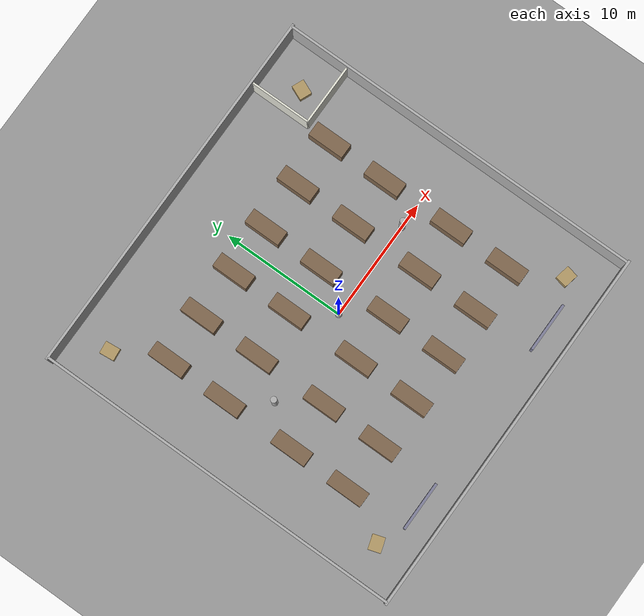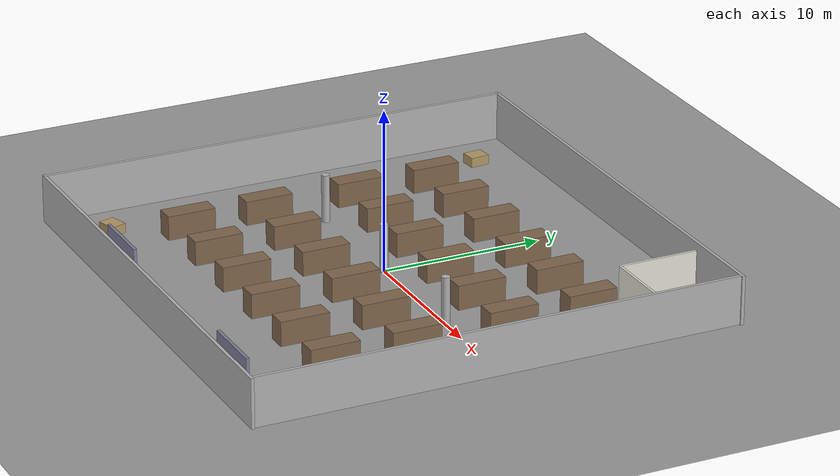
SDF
<?xml version="1.0" ?>
<sdf version="1.8">
  <world name="warehouse">
    <!-- Physics -->
    <physics name="1ms" type="ignored">
      <max_step_size>0.001</max_step_size>
      <real_time_factor>1.0</real_time_factor>
    </physics>

    <!-- Plugins required for simulation -->
    <plugin filename="gz-sim-physics-system" name="gz::sim::systems::Physics"/>
    <plugin filename="gz-sim-user-commands-system" name="gz::sim::systems::UserCommands"/>
    <plugin filename="gz-sim-scene-broadcaster-system" name="gz::sim::systems::SceneBroadcaster"/>
    <plugin filename="gz-sim-contact-system" name="gz::sim::systems::Contact"/>
    <plugin filename="gz-sim-imu-system" name="gz::sim::systems::Imu"/>
    <plugin filename="gz-sim-sensors-system" name="gz::sim::systems::Sensors">
      <render_engine>ogre2</render_engine>
    </plugin>

    <!-- Lighting - ceiling lights -->
    <light type="directional" name="overhead_1">
      <cast_shadows>true</cast_shadows>
      <pose>0 0 12 0 0 0</pose>
      <diffuse>0.9 0.9 0.9 1</diffuse>
      <specular>0.3 0.3 0.3 1</specular>
      <direction>0.0 0.0 -1.0</direction>
    </light>
    <light type="directional" name="overhead_2">
      <cast_shadows>false</cast_shadows>
      <pose>0 0 12 0 0 0</pose>
      <diffuse>0.3 0.3 0.3 1</diffuse>
      <specular>0.1 0.1 0.1 1</specular>
      <direction>-0.5 0.3 -0.8</direction>
    </light>

    <!-- Ground plane (warehouse floor) -->
    <model name="ground_plane">
      <static>true</static>
      <link name="link">
        <collision name="collision">
          <geometry>
            <plane>
              <normal>0 0 1</normal>
              <size>100 100</size>
            </plane>
          </geometry>
        </collision>
        <visual name="visual">
          <geometry>
            <plane>
              <normal>0 0 1</normal>
              <size>100 100</size>
            </plane>
          </geometry>
          <material>
            <ambient>0.6 0.6 0.6 1</ambient>
            <diffuse>0.6 0.6 0.6 1</diffuse>
          </material>
        </visual>
      </link>
    </model>

    <!-- ==================== Outer walls (30m x 30m) ==================== -->
    <!-- North wall -->
    <model name="wall_north">
      <static>true</static>
      <pose>0 15 1.5 0 0 0</pose>
      <link name="link">
        <collision name="collision">
          <geometry><box><size>30.4 0.2 3</size></box></geometry>
        </collision>
        <visual name="visual">
          <geometry><box><size>30.4 0.2 3</size></box></geometry>
          <material><ambient>0.7 0.7 0.7 1</ambient><diffuse>0.7 0.7 0.7 1</diffuse></material>
        </visual>
      </link>
    </model>
    <!-- South wall -->
    <model name="wall_south">
      <static>true</static>
      <pose>0 -15 1.5 0 0 0</pose>
      <link name="link">
        <collision name="collision">
          <geometry><box><size>30.4 0.2 3</size></box></geometry>
        </collision>
        <visual name="visual">
          <geometry><box><size>30.4 0.2 3</size></box></geometry>
          <material><ambient>0.7 0.7 0.7 1</ambient><diffuse>0.7 0.7 0.7 1</diffuse></material>
        </visual>
      </link>
    </model>
    <!-- East wall -->
    <model name="wall_east">
      <static>true</static>
      <pose>15 0 1.5 0 0 0</pose>
      <link name="link">
        <collision name="collision">
          <geometry><box><size>0.2 30 3</size></box></geometry>
        </collision>
        <visual name="visual">
          <geometry><box><size>0.2 30 3</size></box></geometry>
          <material><ambient>0.7 0.7 0.7 1</ambient><diffuse>0.7 0.7 0.7 1</diffuse></material>
        </visual>
      </link>
    </model>
    <!-- West wall -->
    <model name="wall_west">
      <static>true</static>
      <pose>-15 0 1.5 0 0 0</pose>
      <link name="link">
        <collision name="collision">
          <geometry><box><size>0.2 30 3</size></box></geometry>
        </collision>
        <visual name="visual">
          <geometry><box><size>0.2 30 3</size></box></geometry>
          <material><ambient>0.7 0.7 0.7 1</ambient><diffuse>0.7 0.7 0.7 1</diffuse></material>
        </visual>
      </link>
    </model>

    <!-- ==================== Shelf rows (6 rows) ==================== -->
    <!-- Row A: x=-10, y from -10 to 10, 4 shelves -->
    <model name="shelf_a1">
      <static>true</static>
      <pose>-10 -8 0.75 0 0 0</pose>
      <link name="link">
        <collision name="collision"><geometry><box><size>1.2 3.0 1.5</size></box></geometry></collision>
        <visual name="visual">
          <geometry><box><size>1.2 3.0 1.5</size></box></geometry>
          <material><ambient>0.4 0.3 0.2 1</ambient><diffuse>0.5 0.4 0.3 1</diffuse></material>
        </visual>
      </link>
    </model>
    <model name="shelf_a2">
      <static>true</static>
      <pose>-10 -3 0.75 0 0 0</pose>
      <link name="link">
        <collision name="collision"><geometry><box><size>1.2 3.0 1.5</size></box></geometry></collision>
        <visual name="visual">
          <geometry><box><size>1.2 3.0 1.5</size></box></geometry>
          <material><ambient>0.4 0.3 0.2 1</ambient><diffuse>0.5 0.4 0.3 1</diffuse></material>
        </visual>
      </link>
    </model>
    <model name="shelf_a3">
      <static>true</static>
      <pose>-10 3 0.75 0 0 0</pose>
      <link name="link">
        <collision name="collision"><geometry><box><size>1.2 3.0 1.5</size></box></geometry></collision>
        <visual name="visual">
          <geometry><box><size>1.2 3.0 1.5</size></box></geometry>
          <material><ambient>0.4 0.3 0.2 1</ambient><diffuse>0.5 0.4 0.3 1</diffuse></material>
        </visual>
      </link>
    </model>
    <model name="shelf_a4">
      <static>true</static>
      <pose>-10 8 0.75 0 0 0</pose>
      <link name="link">
        <collision name="collision"><geometry><box><size>1.2 3.0 1.5</size></box></geometry></collision>
        <visual name="visual">
          <geometry><box><size>1.2 3.0 1.5</size></box></geometry>
          <material><ambient>0.4 0.3 0.2 1</ambient><diffuse>0.5 0.4 0.3 1</diffuse></material>
        </visual>
      </link>
    </model>

    <!-- Row B: x=-6 -->
    <model name="shelf_b1">
      <static>true</static>
      <pose>-6 -8 0.75 0 0 0</pose>
      <link name="link">
        <collision name="collision"><geometry><box><size>1.2 3.0 1.5</size></box></geometry></collision>
        <visual name="visual">
          <geometry><box><size>1.2 3.0 1.5</size></box></geometry>
          <material><ambient>0.4 0.3 0.2 1</ambient><diffuse>0.5 0.4 0.3 1</diffuse></material>
        </visual>
      </link>
    </model>
    <model name="shelf_b2">
      <static>true</static>
      <pose>-6 -3 0.75 0 0 0</pose>
      <link name="link">
        <collision name="collision"><geometry><box><size>1.2 3.0 1.5</size></box></geometry></collision>
        <visual name="visual">
          <geometry><box><size>1.2 3.0 1.5</size></box></geometry>
          <material><ambient>0.4 0.3 0.2 1</ambient><diffuse>0.5 0.4 0.3 1</diffuse></material>
        </visual>
      </link>
    </model>
    <model name="shelf_b3">
      <static>true</static>
      <pose>-6 3 0.75 0 0 0</pose>
      <link name="link">
        <collision name="collision"><geometry><box><size>1.2 3.0 1.5</size></box></geometry></collision>
        <visual name="visual">
          <geometry><box><size>1.2 3.0 1.5</size></box></geometry>
          <material><ambient>0.4 0.3 0.2 1</ambient><diffuse>0.5 0.4 0.3 1</diffuse></material>
        </visual>
      </link>
    </model>
    <model name="shelf_b4">
      <static>true</static>
      <pose>-6 8 0.75 0 0 0</pose>
      <link name="link">
        <collision name="collision"><geometry><box><size>1.2 3.0 1.5</size></box></geometry></collision>
        <visual name="visual">
          <geometry><box><size>1.2 3.0 1.5</size></box></geometry>
          <material><ambient>0.4 0.3 0.2 1</ambient><diffuse>0.5 0.4 0.3 1</diffuse></material>
        </visual>
      </link>
    </model>

    <!-- Row C: x=-2 -->
    <model name="shelf_c1">
      <static>true</static>
      <pose>-2 -8 0.75 0 0 0</pose>
      <link name="link">
        <collision name="collision"><geometry><box><size>1.2 3.0 1.5</size></box></geometry></collision>
        <visual name="visual">
          <geometry><box><size>1.2 3.0 1.5</size></box></geometry>
          <material><ambient>0.4 0.3 0.2 1</ambient><diffuse>0.5 0.4 0.3 1</diffuse></material>
        </visual>
      </link>
    </model>
    <model name="shelf_c2">
      <static>true</static>
      <pose>-2 -3 0.75 0 0 0</pose>
      <link name="link">
        <collision name="collision"><geometry><box><size>1.2 3.0 1.5</size></box></geometry></collision>
        <visual name="visual">
          <geometry><box><size>1.2 3.0 1.5</size></box></geometry>
          <material><ambient>0.4 0.3 0.2 1</ambient><diffuse>0.5 0.4 0.3 1</diffuse></material>
        </visual>
      </link>
    </model>
    <model name="shelf_c3">
      <static>true</static>
      <pose>-2 3 0.75 0 0 0</pose>
      <link name="link">
        <collision name="collision"><geometry><box><size>1.2 3.0 1.5</size></box></geometry></collision>
        <visual name="visual">
          <geometry><box><size>1.2 3.0 1.5</size></box></geometry>
          <material><ambient>0.4 0.3 0.2 1</ambient><diffuse>0.5 0.4 0.3 1</diffuse></material>
        </visual>
      </link>
    </model>
    <model name="shelf_c4">
      <static>true</static>
      <pose>-2 8 0.75 0 0 0</pose>
      <link name="link">
        <collision name="collision"><geometry><box><size>1.2 3.0 1.5</size></box></geometry></collision>
        <visual name="visual">
          <geometry><box><size>1.2 3.0 1.5</size></box></geometry>
          <material><ambient>0.4 0.3 0.2 1</ambient><diffuse>0.5 0.4 0.3 1</diffuse></material>
        </visual>
      </link>
    </model>

    <!-- Row D: x=2 -->
    <model name="shelf_d1">
      <static>true</static>
      <pose>2 -8 0.75 0 0 0</pose>
      <link name="link">
        <collision name="collision"><geometry><box><size>1.2 3.0 1.5</size></box></geometry></collision>
        <visual name="visual">
          <geometry><box><size>1.2 3.0 1.5</size></box></geometry>
          <material><ambient>0.4 0.3 0.2 1</ambient><diffuse>0.5 0.4 0.3 1</diffuse></material>
        </visual>
      </link>
    </model>
    <model name="shelf_d2">
      <static>true</static>
      <pose>2 -3 0.75 0 0 0</pose>
      <link name="link">
        <collision name="collision"><geometry><box><size>1.2 3.0 1.5</size></box></geometry></collision>
        <visual name="visual">
          <geometry><box><size>1.2 3.0 1.5</size></box></geometry>
          <material><ambient>0.4 0.3 0.2 1</ambient><diffuse>0.5 0.4 0.3 1</diffuse></material>
        </visual>
      </link>
    </model>
    <model name="shelf_d3">
      <static>true</static>
      <pose>2 3 0.75 0 0 0</pose>
      <link name="link">
        <collision name="collision"><geometry><box><size>1.2 3.0 1.5</size></box></geometry></collision>
        <visual name="visual">
          <geometry><box><size>1.2 3.0 1.5</size></box></geometry>
          <material><ambient>0.4 0.3 0.2 1</ambient><diffuse>0.5 0.4 0.3 1</diffuse></material>
        </visual>
      </link>
    </model>
    <model name="shelf_d4">
      <static>true</static>
      <pose>2 8 0.75 0 0 0</pose>
      <link name="link">
        <collision name="collision"><geometry><box><size>1.2 3.0 1.5</size></box></geometry></collision>
        <visual name="visual">
          <geometry><box><size>1.2 3.0 1.5</size></box></geometry>
          <material><ambient>0.4 0.3 0.2 1</ambient><diffuse>0.5 0.4 0.3 1</diffuse></material>
        </visual>
      </link>
    </model>

    <!-- Row E: x=6 -->
    <model name="shelf_e1">
      <static>true</static>
      <pose>6 -8 0.75 0 0 0</pose>
      <link name="link">
        <collision name="collision"><geometry><box><size>1.2 3.0 1.5</size></box></geometry></collision>
        <visual name="visual">
          <geometry><box><size>1.2 3.0 1.5</size></box></geometry>
          <material><ambient>0.4 0.3 0.2 1</ambient><diffuse>0.5 0.4 0.3 1</diffuse></material>
        </visual>
      </link>
    </model>
    <model name="shelf_e2">
      <static>true</static>
      <pose>6 -3 0.75 0 0 0</pose>
      <link name="link">
        <collision name="collision"><geometry><box><size>1.2 3.0 1.5</size></box></geometry></collision>
        <visual name="visual">
          <geometry><box><size>1.2 3.0 1.5</size></box></geometry>
          <material><ambient>0.4 0.3 0.2 1</ambient><diffuse>0.5 0.4 0.3 1</diffuse></material>
        </visual>
      </link>
    </model>
    <model name="shelf_e3">
      <static>true</static>
      <pose>6 3 0.75 0 0 0</pose>
      <link name="link">
        <collision name="collision"><geometry><box><size>1.2 3.0 1.5</size></box></geometry></collision>
        <visual name="visual">
          <geometry><box><size>1.2 3.0 1.5</size></box></geometry>
          <material><ambient>0.4 0.3 0.2 1</ambient><diffuse>0.5 0.4 0.3 1</diffuse></material>
        </visual>
      </link>
    </model>
    <model name="shelf_e4">
      <static>true</static>
      <pose>6 8 0.75 0 0 0</pose>
      <link name="link">
        <collision name="collision"><geometry><box><size>1.2 3.0 1.5</size></box></geometry></collision>
        <visual name="visual">
          <geometry><box><size>1.2 3.0 1.5</size></box></geometry>
          <material><ambient>0.4 0.3 0.2 1</ambient><diffuse>0.5 0.4 0.3 1</diffuse></material>
        </visual>
      </link>
    </model>

    <!-- Row F: x=10 -->
    <model name="shelf_f1">
      <static>true</static>
      <pose>10 -8 0.75 0 0 0</pose>
      <link name="link">
        <collision name="collision"><geometry><box><size>1.2 3.0 1.5</size></box></geometry></collision>
        <visual name="visual">
          <geometry><box><size>1.2 3.0 1.5</size></box></geometry>
          <material><ambient>0.4 0.3 0.2 1</ambient><diffuse>0.5 0.4 0.3 1</diffuse></material>
        </visual>
      </link>
    </model>
    <model name="shelf_f2">
      <static>true</static>
      <pose>10 -3 0.75 0 0 0</pose>
      <link name="link">
        <collision name="collision"><geometry><box><size>1.2 3.0 1.5</size></box></geometry></collision>
        <visual name="visual">
          <geometry><box><size>1.2 3.0 1.5</size></box></geometry>
          <material><ambient>0.4 0.3 0.2 1</ambient><diffuse>0.5 0.4 0.3 1</diffuse></material>
        </visual>
      </link>
    </model>
    <model name="shelf_f3">
      <static>true</static>
      <pose>10 3 0.75 0 0 0</pose>
      <link name="link">
        <collision name="collision"><geometry><box><size>1.2 3.0 1.5</size></box></geometry></collision>
        <visual name="visual">
          <geometry><box><size>1.2 3.0 1.5</size></box></geometry>
          <material><ambient>0.4 0.3 0.2 1</ambient><diffuse>0.5 0.4 0.3 1</diffuse></material>
        </visual>
      </link>
    </model>
    <model name="shelf_f4">
      <static>true</static>
      <pose>10 8 0.75 0 0 0</pose>
      <link name="link">
        <collision name="collision"><geometry><box><size>1.2 3.0 1.5</size></box></geometry></collision>
        <visual name="visual">
          <geometry><box><size>1.2 3.0 1.5</size></box></geometry>
          <material><ambient>0.4 0.3 0.2 1</ambient><diffuse>0.5 0.4 0.3 1</diffuse></material>
        </visual>
      </link>
    </model>

    <!-- ==================== Loading dock area (south side) ==================== -->
    <!-- Dock wall with opening -->
    <model name="dock_wall_left">
      <static>true</static>
      <pose>-8 -13 0.75 0 0 0</pose>
      <link name="link">
        <collision name="collision"><geometry><box><size>4 0.2 1.5</size></box></geometry></collision>
        <visual name="visual">
          <geometry><box><size>4 0.2 1.5</size></box></geometry>
          <material><ambient>0.5 0.5 0.6 1</ambient><diffuse>0.5 0.5 0.6 1</diffuse></material>
        </visual>
      </link>
    </model>
    <model name="dock_wall_right">
      <static>true</static>
      <pose>8 -13 0.75 0 0 0</pose>
      <link name="link">
        <collision name="collision"><geometry><box><size>4 0.2 1.5</size></box></geometry></collision>
        <visual name="visual">
          <geometry><box><size>4 0.2 1.5</size></box></geometry>
          <material><ambient>0.5 0.5 0.6 1</ambient><diffuse>0.5 0.5 0.6 1</diffuse></material>
        </visual>
      </link>
    </model>

    <!-- ==================== Pallets / crates (scattered) ==================== -->
    <model name="pallet_1">
      <static>true</static>
      <pose>-12 -12 0.3 0 0 0.3</pose>
      <link name="link">
        <collision name="collision"><geometry><box><size>1.2 1.0 0.6</size></box></geometry></collision>
        <visual name="visual">
          <geometry><box><size>1.2 1.0 0.6</size></box></geometry>
          <material><ambient>0.6 0.5 0.3 1</ambient><diffuse>0.7 0.6 0.4 1</diffuse></material>
        </visual>
      </link>
    </model>
    <model name="pallet_2">
      <static>true</static>
      <pose>12 -12 0.3 0 0 -0.2</pose>
      <link name="link">
        <collision name="collision"><geometry><box><size>1.2 1.0 0.6</size></box></geometry></collision>
        <visual name="visual">
          <geometry><box><size>1.2 1.0 0.6</size></box></geometry>
          <material><ambient>0.6 0.5 0.3 1</ambient><diffuse>0.7 0.6 0.4 1</diffuse></material>
        </visual>
      </link>
    </model>
    <model name="pallet_3">
      <static>true</static>
      <pose>-12 12 0.3 0 0 0.1</pose>
      <link name="link">
        <collision name="collision"><geometry><box><size>1.0 1.2 0.6</size></box></geometry></collision>
        <visual name="visual">
          <geometry><box><size>1.0 1.2 0.6</size></box></geometry>
          <material><ambient>0.6 0.5 0.3 1</ambient><diffuse>0.7 0.6 0.4 1</diffuse></material>
        </visual>
      </link>
    </model>
    <model name="pallet_4">
      <static>true</static>
      <pose>12 12 0.3 0 0 -0.4</pose>
      <link name="link">
        <collision name="collision"><geometry><box><size>1.0 1.2 0.6</size></box></geometry></collision>
        <visual name="visual">
          <geometry><box><size>1.0 1.2 0.6</size></box></geometry>
          <material><ambient>0.6 0.5 0.3 1</ambient><diffuse>0.7 0.6 0.4 1</diffuse></material>
        </visual>
      </link>
    </model>

    <!-- ==================== Pillars (structural columns) ==================== -->
    <model name="pillar_1">
      <static>true</static>
      <pose>-8 0 1.5 0 0 0</pose>
      <link name="link">
        <collision name="collision"><geometry><cylinder><radius>0.25</radius><length>3</length></cylinder></geometry></collision>
        <visual name="visual">
          <geometry><cylinder><radius>0.25</radius><length>3</length></cylinder></geometry>
          <material><ambient>0.6 0.6 0.6 1</ambient><diffuse>0.7 0.7 0.7 1</diffuse></material>
        </visual>
      </link>
    </model>
    <model name="pillar_2">
      <static>true</static>
      <pose>0 0 1.5 0 0 0</pose>
      <link name="link">
        <collision name="collision"><geometry><cylinder><radius>0.25</radius><length>3</length></cylinder></geometry></collision>
        <visual name="visual">
          <geometry><cylinder><radius>0.25</radius><length>3</length></cylinder></geometry>
          <material><ambient>0.6 0.6 0.6 1</ambient><diffuse>0.7 0.7 0.7 1</diffuse></material>
        </visual>
      </link>
    </model>
    <model name="pillar_3">
      <static>true</static>
      <pose>8 0 1.5 0 0 0</pose>
      <link name="link">
        <collision name="collision"><geometry><cylinder><radius>0.25</radius><length>3</length></cylinder></geometry></collision>
        <visual name="visual">
          <geometry><cylinder><radius>0.25</radius><length>3</length></cylinder></geometry>
          <material><ambient>0.6 0.6 0.6 1</ambient><diffuse>0.7 0.7 0.7 1</diffuse></material>
        </visual>
      </link>
    </model>

    <!-- ==================== Office partition (NE corner) ==================== -->
    <model name="office_wall_south">
      <static>true</static>
      <pose>12.5 10 1.25 0 0 0</pose>
      <link name="link">
        <collision name="collision"><geometry><box><size>5 0.15 2.5</size></box></geometry></collision>
        <visual name="visual">
          <geometry><box><size>5 0.15 2.5</size></box></geometry>
          <material><ambient>0.85 0.85 0.8 1</ambient><diffuse>0.9 0.9 0.85 1</diffuse></material>
        </visual>
      </link>
    </model>
    <model name="office_wall_west">
      <static>true</static>
      <pose>10 12.5 1.25 0 0 0</pose>
      <link name="link">
        <collision name="collision"><geometry><box><size>0.15 5 2.5</size></box></geometry></collision>
        <visual name="visual">
          <geometry><box><size>0.15 5 2.5</size></box></geometry>
          <material><ambient>0.85 0.85 0.8 1</ambient><diffuse>0.9 0.9 0.85 1</diffuse></material>
        </visual>
      </link>
    </model>

  </world>
</sdf>
